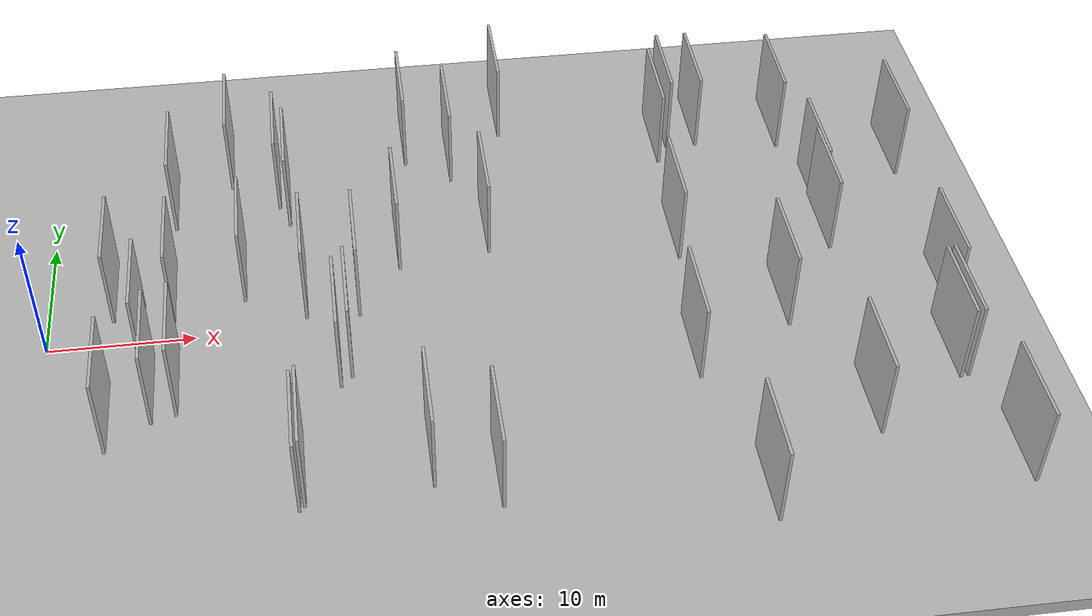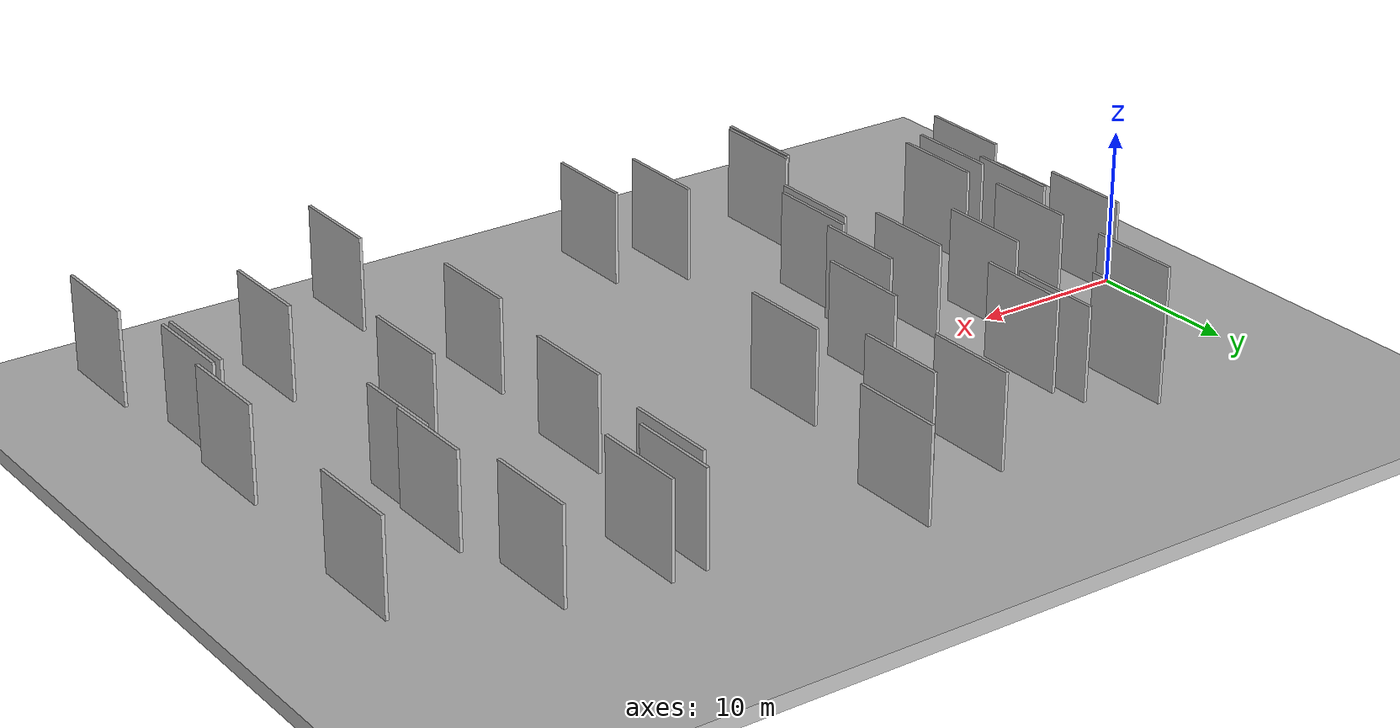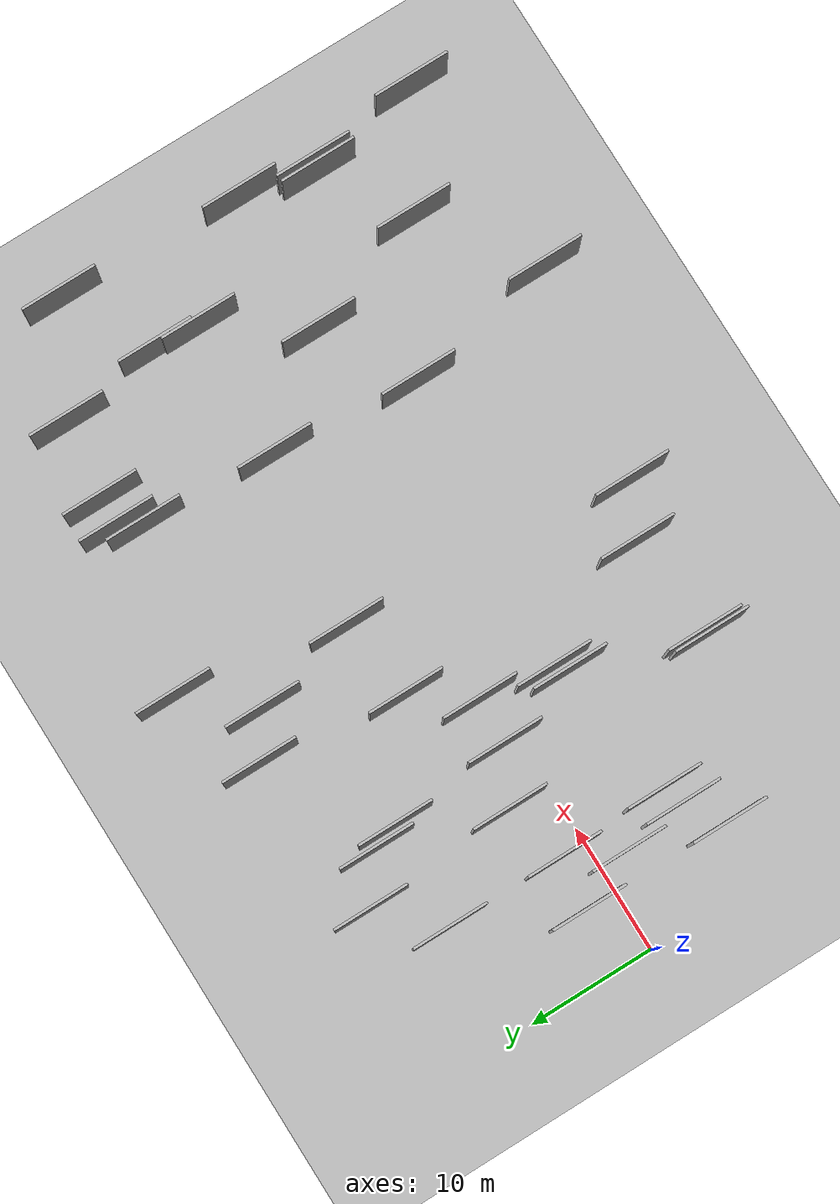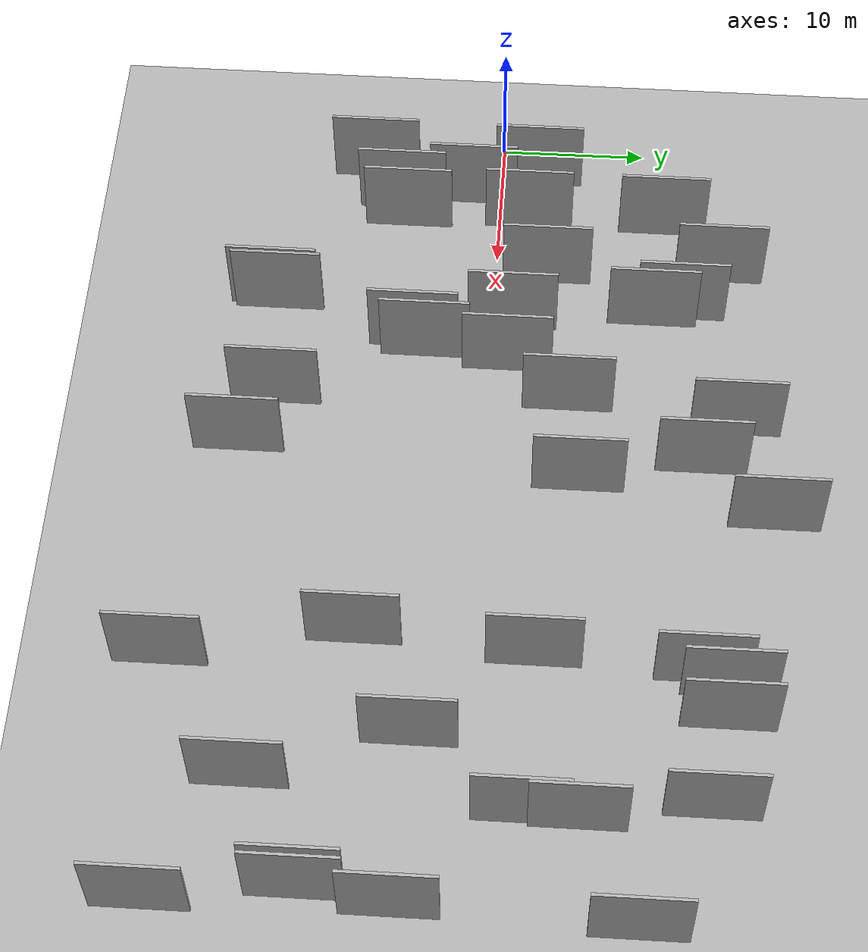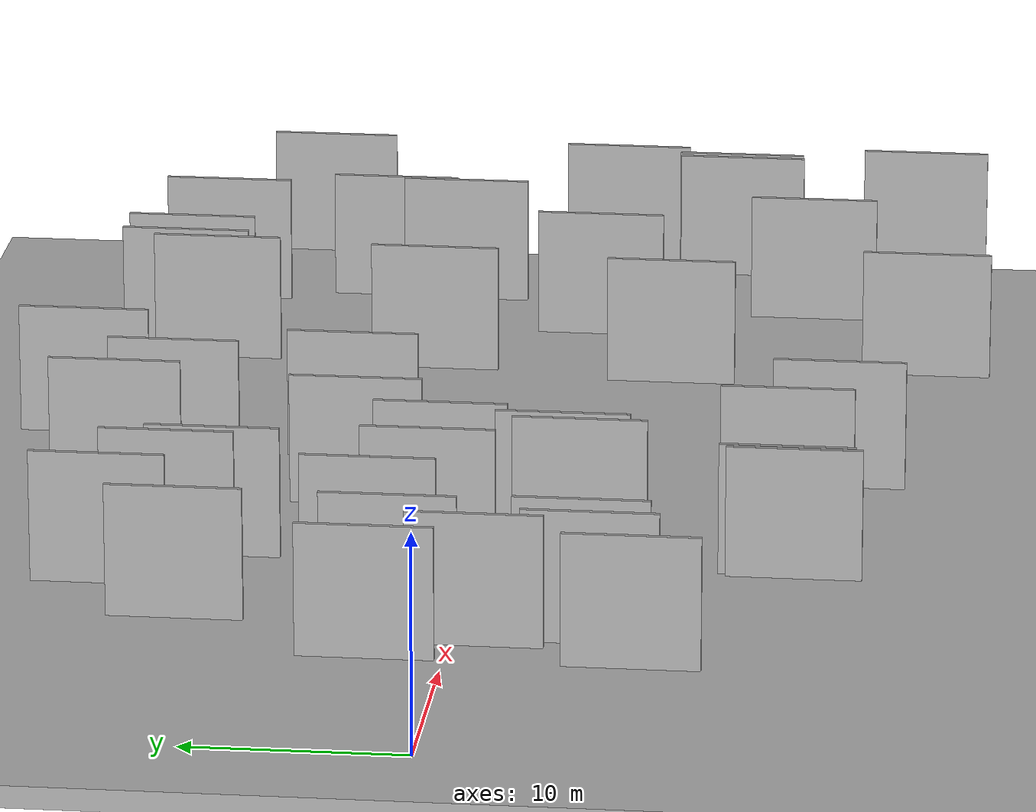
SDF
<?xml version="1.0" encoding="utf-8"?>

<sdf version="1.6">

   <world name="default">

      <gui fullscreen="0">

         <camera name="user_camera">

            <pose>-15 0 4.57585 0 0 0</pose>

            <view_controller>orbit</view_controller>

         </camera>

      </gui>

      <scene>

         <sky>

           <clouds>

             <speed>12</speed>

           </clouds>

         </sky>

         <ambient>0.4 0.4 0.4 1</ambient>

         <background>0.7 0.7 0.7 1</background>

         <shadows>1</shadows>

      </scene>

      <gravity>0 0 -9.8066</gravity>

      <magnetic_field>6e-06 2.3e-05 -4.2e-05</magnetic_field>

      <physics default="0" name="default_physics" type="ode">

         <ode>

            <solver>

               <type>quick</type>

               <iters>10</iters>

               <sor>1.0</sor>

               <use_dynamic_moi_rescaling>0</use_dynamic_moi_rescaling>

            </solver>

            <constraints>

               <cfm>0</cfm>

               <erp>0.2</erp>

               <contact_max_correcting_vel>100</contact_max_correcting_vel>

               <contact_surface_layer>0.001</contact_surface_layer>

            </constraints>

         </ode>

         <max_step_size>0.004</max_step_size>

         <real_time_factor>1</real_time_factor>

         <real_time_update_rate>250</real_time_update_rate>

      </physics>

      <light name="sun" type="directional">

         <cast_shadows>1</cast_shadows>

         <pose>0 0 10 0 0 0</pose>

         <diffuse>0.8 0.8 0.8 1</diffuse>

         <specular>0.2 0.2 0.2 1</specular>

         <attenuation>

            <range>1000</range>

            <constant>0.9</constant>

            <linear>0.01</linear>

            <quadratic>0.001</quadratic>

         </attenuation>

         <direction>-0.5 0.1 -0.9</direction>

      </light>

      <include>

         <name>ground_plane_1</name>

         <uri>model://HANNAS_ground_plane</uri>

         <pose>0 0 0  0 0 0</pose>

      </include>

      <include>

         <name>ground_plane_2</name>

         <uri>model://HANNAS_ground_plane</uri>

         <pose>100 0 0  0 0 0</pose>

      </include>

      <model name="HANNAS_wall_1">

         <static>1</static>

         <pose frame="">60.9455 -18.0654 2.5 0.000000 0.000000 1.570796</pose>

         <link name="link">

            <pose frame="">0 0 3.00 0 0 0</pose>

            <collision name="collision">

               <geometry>

                  <box>

                     <size>6.00 0.2 6.00</size>

                  </box>

               </geometry>

               <max_contacts>10</max_contacts>

               <surface>

                  <contact>

                     <ode/>

                  </contact>

                  <bounce/>

                  <friction>

                     <torsional>

                        <ode/>

                     </torsional>

                     <ode/>

                  </friction>

               </surface>

            </collision>

            <visual name="visual">

               <cast_shadows>0</cast_shadows>

               <geometry>

                  <box>

                     <size>6.00 0.2 6.00</size>

                  </box>

               </geometry>

               <material>

                  <script>

                     <uri>model://HANNAS_wall/materials/scripts</uri>

                     <uri>model://HANNAS_wall/materials/textures</uri>

                     <name>vrc/HANNAS_wall</name>

                  </script>

               </material>

            </visual>

            <self_collide>0</self_collide>

            <enable_wind>0</enable_wind>

            <kinematic>0</kinematic>

         </link>

      </model>

      <model name="HANNAS_wall_2">

         <static>1</static>

         <pose frame="">47.1748 16.1364 2.5 0.000000 0.000000 1.570796</pose>

         <link name="link">

            <pose frame="">0 0 3.00 0 0 0</pose>

            <collision name="collision">

               <geometry>

                  <box>

                     <size>6.00 0.2 6.00</size>

                  </box>

               </geometry>

               <max_contacts>10</max_contacts>

               <surface>

                  <contact>

                     <ode/>

                  </contact>

                  <bounce/>

                  <friction>

                     <torsional>

                        <ode/>

                     </torsional>

                     <ode/>

                  </friction>

               </surface>

            </collision>

            <visual name="visual">

               <cast_shadows>0</cast_shadows>

               <geometry>

                  <box>

                     <size>6.00 0.2 6.00</size>

                  </box>

               </geometry>

               <material>

                  <script>

                     <uri>model://HANNAS_wall/materials/scripts</uri>

                     <uri>model://HANNAS_wall/materials/textures</uri>

                     <name>vrc/HANNAS_wall</name>

                  </script>

               </material>

            </visual>

            <self_collide>0</self_collide>

            <enable_wind>0</enable_wind>

            <kinematic>0</kinematic>

         </link>

      </model>

      <model name="HANNAS_wall_3">

         <static>1</static>

         <pose frame="">16.5662 -14.8393 2.5 0.000000 0.000000 1.570796</pose>

         <link name="link">

            <pose frame="">0 0 3.00 0 0 0</pose>

            <collision name="collision">

               <geometry>

                  <box>

                     <size>6.00 0.2 6.00</size>

                  </box>

               </geometry>

               <max_contacts>10</max_contacts>

               <surface>

                  <contact>

                     <ode/>

                  </contact>

                  <bounce/>

                  <friction>

                     <torsional>

                        <ode/>

                     </torsional>

                     <ode/>

                  </friction>

               </surface>

            </collision>

            <visual name="visual">

               <cast_shadows>0</cast_shadows>

               <geometry>

                  <box>

                     <size>6.00 0.2 6.00</size>

                  </box>

               </geometry>

               <material>

                  <script>

                     <uri>model://HANNAS_wall/materials/scripts</uri>

                     <uri>model://HANNAS_wall/materials/textures</uri>

                     <name>vrc/HANNAS_wall</name>

                  </script>

               </material>

            </visual>

            <self_collide>0</self_collide>

            <enable_wind>0</enable_wind>

            <kinematic>0</kinematic>

         </link>

      </model>

      <model name="HANNAS_wall_4">

         <static>1</static>

         <pose frame="">44.8052 -19.0367 2.5 0.000000 0.000000 1.570796</pose>

         <link name="link">

            <pose frame="">0 0 3.00 0 0 0</pose>

            <collision name="collision">

               <geometry>

                  <box>

                     <size>6.00 0.2 6.00</size>

                  </box>

               </geometry>

               <max_contacts>10</max_contacts>

               <surface>

                  <contact>

                     <ode/>

                  </contact>

                  <bounce/>

                  <friction>

                     <torsional>

                        <ode/>

                     </torsional>

                     <ode/>

                  </friction>

               </surface>

            </collision>

            <visual name="visual">

               <cast_shadows>0</cast_shadows>

               <geometry>

                  <box>

                     <size>6.00 0.2 6.00</size>

                  </box>

               </geometry>

               <material>

                  <script>

                     <uri>model://HANNAS_wall/materials/scripts</uri>

                     <uri>model://HANNAS_wall/materials/textures</uri>

                     <name>vrc/HANNAS_wall</name>

                  </script>

               </material>

            </visual>

            <self_collide>0</self_collide>

            <enable_wind>0</enable_wind>

            <kinematic>0</kinematic>

         </link>

      </model>

      <model name="HANNAS_wall_5">

         <static>1</static>

         <pose frame="">25.4882 16.5224 2.5 0.000000 0.000000 1.570796</pose>

         <link name="link">

            <pose frame="">0 0 3.00 0 0 0</pose>

            <collision name="collision">

               <geometry>

                  <box>

                     <size>6.00 0.2 6.00</size>

                  </box>

               </geometry>

               <max_contacts>10</max_contacts>

               <surface>

                  <contact>

                     <ode/>

                  </contact>

                  <bounce/>

                  <friction>

                     <torsional>

                        <ode/>

                     </torsional>

                     <ode/>

                  </friction>

               </surface>

            </collision>

            <visual name="visual">

               <cast_shadows>0</cast_shadows>

               <geometry>

                  <box>

                     <size>6.00 0.2 6.00</size>

                  </box>

               </geometry>

               <material>

                  <script>

                     <uri>model://HANNAS_wall/materials/scripts</uri>

                     <uri>model://HANNAS_wall/materials/textures</uri>

                     <name>vrc/HANNAS_wall</name>

                  </script>

               </material>

            </visual>

            <self_collide>0</self_collide>

            <enable_wind>0</enable_wind>

            <kinematic>0</kinematic>

         </link>

      </model>

      <model name="HANNAS_wall_6">

         <static>1</static>

         <pose frame="">8.8410 2.0993 2.5 0.000000 0.000000 1.570796</pose>

         <link name="link">

            <pose frame="">0 0 3.00 0 0 0</pose>

            <collision name="collision">

               <geometry>

                  <box>

                     <size>6.00 0.2 6.00</size>

                  </box>

               </geometry>

               <max_contacts>10</max_contacts>

               <surface>

                  <contact>

                     <ode/>

                  </contact>

                  <bounce/>

                  <friction>

                     <torsional>

                        <ode/>

                     </torsional>

                     <ode/>

                  </friction>

               </surface>

            </collision>

            <visual name="visual">

               <cast_shadows>0</cast_shadows>

               <geometry>

                  <box>

                     <size>6.00 0.2 6.00</size>

                  </box>

               </geometry>

               <material>

                  <script>

                     <uri>model://HANNAS_wall/materials/scripts</uri>

                     <uri>model://HANNAS_wall/materials/textures</uri>

                     <name>vrc/HANNAS_wall</name>

                  </script>

               </material>

            </visual>

            <self_collide>0</self_collide>

            <enable_wind>0</enable_wind>

            <kinematic>0</kinematic>

         </link>

      </model>

      <model name="HANNAS_wall_7">

         <static>1</static>

         <pose frame="">60.5503 -3.5335 2.5 0.000000 0.000000 1.570796</pose>

         <link name="link">

            <pose frame="">0 0 3.00 0 0 0</pose>

            <collision name="collision">

               <geometry>

                  <box>

                     <size>6.00 0.2 6.00</size>

                  </box>

               </geometry>

               <max_contacts>10</max_contacts>

               <surface>

                  <contact>

                     <ode/>

                  </contact>

                  <bounce/>

                  <friction>

                     <torsional>

                        <ode/>

                     </torsional>

                     <ode/>

                  </friction>

               </surface>

            </collision>

            <visual name="visual">

               <cast_shadows>0</cast_shadows>

               <geometry>

                  <box>

                     <size>6.00 0.2 6.00</size>

                  </box>

               </geometry>

               <material>

                  <script>

                     <uri>model://HANNAS_wall/materials/scripts</uri>

                     <uri>model://HANNAS_wall/materials/textures</uri>

                     <name>vrc/HANNAS_wall</name>

                  </script>

               </material>

            </visual>

            <self_collide>0</self_collide>

            <enable_wind>0</enable_wind>

            <kinematic>0</kinematic>

         </link>

      </model>

      <model name="HANNAS_wall_8">

         <static>1</static>

         <pose frame="">30.4739 6.3289 2.5 0.000000 0.000000 1.570796</pose>

         <link name="link">

            <pose frame="">0 0 3.00 0 0 0</pose>

            <collision name="collision">

               <geometry>

                  <box>

                     <size>6.00 0.2 6.00</size>

                  </box>

               </geometry>

               <max_contacts>10</max_contacts>

               <surface>

                  <contact>

                     <ode/>

                  </contact>

                  <bounce/>

                  <friction>

                     <torsional>

                        <ode/>

                     </torsional>

                     <ode/>

                  </friction>

               </surface>

            </collision>

            <visual name="visual">

               <cast_shadows>0</cast_shadows>

               <geometry>

                  <box>

                     <size>6.00 0.2 6.00</size>

                  </box>

               </geometry>

               <material>

                  <script>

                     <uri>model://HANNAS_wall/materials/scripts</uri>

                     <uri>model://HANNAS_wall/materials/textures</uri>

                     <name>vrc/HANNAS_wall</name>

                  </script>

               </material>

            </visual>

            <self_collide>0</self_collide>

            <enable_wind>0</enable_wind>

            <kinematic>0</kinematic>

         </link>

      </model>

      <model name="HANNAS_wall_9">

         <static>1</static>

         <pose frame="">24.7424 -13.9492 2.5 0.000000 0.000000 1.570796</pose>

         <link name="link">

            <pose frame="">0 0 3.00 0 0 0</pose>

            <collision name="collision">

               <geometry>

                  <box>

                     <size>6.00 0.2 6.00</size>

                  </box>

               </geometry>

               <max_contacts>10</max_contacts>

               <surface>

                  <contact>

                     <ode/>

                  </contact>

                  <bounce/>

                  <friction>

                     <torsional>

                        <ode/>

                     </torsional>

                     <ode/>

                  </friction>

               </surface>

            </collision>

            <visual name="visual">

               <cast_shadows>0</cast_shadows>

               <geometry>

                  <box>

                     <size>6.00 0.2 6.00</size>

                  </box>

               </geometry>

               <material>

                  <script>

                     <uri>model://HANNAS_wall/materials/scripts</uri>

                     <uri>model://HANNAS_wall/materials/textures</uri>

                     <name>vrc/HANNAS_wall</name>

                  </script>

               </material>

            </visual>

            <self_collide>0</self_collide>

            <enable_wind>0</enable_wind>

            <kinematic>0</kinematic>

         </link>

      </model>

      <model name="HANNAS_wall_10">

         <static>1</static>

         <pose frame="">32.6877 19.0585 2.5 0.000000 0.000000 1.570796</pose>

         <link name="link">

            <pose frame="">0 0 3.00 0 0 0</pose>

            <collision name="collision">

               <geometry>

                  <box>

                     <size>6.00 0.2 6.00</size>

                  </box>

               </geometry>

               <max_contacts>10</max_contacts>

               <surface>

                  <contact>

                     <ode/>

                  </contact>

                  <bounce/>

                  <friction>

                     <torsional>

                        <ode/>

                     </torsional>

                     <ode/>

                  </friction>

               </surface>

            </collision>

            <visual name="visual">

               <cast_shadows>0</cast_shadows>

               <geometry>

                  <box>

                     <size>6.00 0.2 6.00</size>

                  </box>

               </geometry>

               <material>

                  <script>

                     <uri>model://HANNAS_wall/materials/scripts</uri>

                     <uri>model://HANNAS_wall/materials/textures</uri>

                     <name>vrc/HANNAS_wall</name>

                  </script>

               </material>

            </visual>

            <self_collide>0</self_collide>

            <enable_wind>0</enable_wind>

            <kinematic>0</kinematic>

         </link>

      </model>

      <model name="HANNAS_wall_11">

         <static>1</static>

         <pose frame="">59.2138 -9.2210 2.5 0.000000 0.000000 1.570796</pose>

         <link name="link">

            <pose frame="">0 0 3.00 0 0 0</pose>

            <collision name="collision">

               <geometry>

                  <box>

                     <size>6.00 0.2 6.00</size>

                  </box>

               </geometry>

               <max_contacts>10</max_contacts>

               <surface>

                  <contact>

                     <ode/>

                  </contact>

                  <bounce/>

                  <friction>

                     <torsional>

                        <ode/>

                     </torsional>

                     <ode/>

                  </friction>

               </surface>

            </collision>

            <visual name="visual">

               <cast_shadows>0</cast_shadows>

               <geometry>

                  <box>

                     <size>6.00 0.2 6.00</size>

                  </box>

               </geometry>

               <material>

                  <script>

                     <uri>model://HANNAS_wall/materials/scripts</uri>

                     <uri>model://HANNAS_wall/materials/textures</uri>

                     <name>vrc/HANNAS_wall</name>

                  </script>

               </material>

            </visual>

            <self_collide>0</self_collide>

            <enable_wind>0</enable_wind>

            <kinematic>0</kinematic>

         </link>

      </model>

      <model name="HANNAS_wall_12">

         <static>1</static>

         <pose frame="">21.1701 1.2390 2.5 0.000000 0.000000 1.570796</pose>

         <link name="link">

            <pose frame="">0 0 3.00 0 0 0</pose>

            <collision name="collision">

               <geometry>

                  <box>

                     <size>6.00 0.2 6.00</size>

                  </box>

               </geometry>

               <max_contacts>10</max_contacts>

               <surface>

                  <contact>

                     <ode/>

                  </contact>

                  <bounce/>

                  <friction>

                     <torsional>

                        <ode/>

                     </torsional>

                     <ode/>

                  </friction>

               </surface>

            </collision>

            <visual name="visual">

               <cast_shadows>0</cast_shadows>

               <geometry>

                  <box>

                     <size>6.00 0.2 6.00</size>

                  </box>

               </geometry>

               <material>

                  <script>

                     <uri>model://HANNAS_wall/materials/scripts</uri>

                     <uri>model://HANNAS_wall/materials/textures</uri>

                     <name>vrc/HANNAS_wall</name>

                  </script>

               </material>

            </visual>

            <self_collide>0</self_collide>

            <enable_wind>0</enable_wind>

            <kinematic>0</kinematic>

         </link>

      </model>

      <model name="HANNAS_wall_13">

         <static>1</static>

         <pose frame="">49.4481 -3.2021 2.5 0.000000 0.000000 1.570796</pose>

         <link name="link">

            <pose frame="">0 0 3.00 0 0 0</pose>

            <collision name="collision">

               <geometry>

                  <box>

                     <size>6.00 0.2 6.00</size>

                  </box>

               </geometry>

               <max_contacts>10</max_contacts>

               <surface>

                  <contact>

                     <ode/>

                  </contact>

                  <bounce/>

                  <friction>

                     <torsional>

                        <ode/>

                     </torsional>

                     <ode/>

                  </friction>

               </surface>

            </collision>

            <visual name="visual">

               <cast_shadows>0</cast_shadows>

               <geometry>

                  <box>

                     <size>6.00 0.2 6.00</size>

                  </box>

               </geometry>

               <material>

                  <script>

                     <uri>model://HANNAS_wall/materials/scripts</uri>

                     <uri>model://HANNAS_wall/materials/textures</uri>

                     <name>vrc/HANNAS_wall</name>

                  </script>

               </material>

            </visual>

            <self_collide>0</self_collide>

            <enable_wind>0</enable_wind>

            <kinematic>0</kinematic>

         </link>

      </model>

      <model name="HANNAS_wall_14">

         <static>1</static>

         <pose frame="">43.5170 4.0798 2.5 0.000000 0.000000 1.570796</pose>

         <link name="link">

            <pose frame="">0 0 3.00 0 0 0</pose>

            <collision name="collision">

               <geometry>

                  <box>

                     <size>6.00 0.2 6.00</size>

                  </box>

               </geometry>

               <max_contacts>10</max_contacts>

               <surface>

                  <contact>

                     <ode/>

                  </contact>

                  <bounce/>

                  <friction>

                     <torsional>

                        <ode/>

                     </torsional>

                     <ode/>

                  </friction>

               </surface>

            </collision>

            <visual name="visual">

               <cast_shadows>0</cast_shadows>

               <geometry>

                  <box>

                     <size>6.00 0.2 6.00</size>

                  </box>

               </geometry>

               <material>

                  <script>

                     <uri>model://HANNAS_wall/materials/scripts</uri>

                     <uri>model://HANNAS_wall/materials/textures</uri>

                     <name>vrc/HANNAS_wall</name>

                  </script>

               </material>

            </visual>

            <self_collide>0</self_collide>

            <enable_wind>0</enable_wind>

            <kinematic>0</kinematic>

         </link>

      </model>

      <model name="HANNAS_wall_15">

         <static>1</static>

         <pose frame="">59.7355 -9.1402 2.5 0.000000 0.000000 1.570796</pose>

         <link name="link">

            <pose frame="">0 0 3.00 0 0 0</pose>

            <collision name="collision">

               <geometry>

                  <box>

                     <size>6.00 0.2 6.00</size>

                  </box>

               </geometry>

               <max_contacts>10</max_contacts>

               <surface>

                  <contact>

                     <ode/>

                  </contact>

                  <bounce/>

                  <friction>

                     <torsional>

                        <ode/>

                     </torsional>

                     <ode/>

                  </friction>

               </surface>

            </collision>

            <visual name="visual">

               <cast_shadows>0</cast_shadows>

               <geometry>

                  <box>

                     <size>6.00 0.2 6.00</size>

                  </box>

               </geometry>

               <material>

                  <script>

                     <uri>model://HANNAS_wall/materials/scripts</uri>

                     <uri>model://HANNAS_wall/materials/textures</uri>

                     <name>vrc/HANNAS_wall</name>

                  </script>

               </material>

            </visual>

            <self_collide>0</self_collide>

            <enable_wind>0</enable_wind>

            <kinematic>0</kinematic>

         </link>

      </model>

      <model name="HANNAS_wall_16">

         <static>1</static>

         <pose frame="">28.6353 14.3151 2.5 0.000000 0.000000 1.570796</pose>

         <link name="link">

            <pose frame="">0 0 3.00 0 0 0</pose>

            <collision name="collision">

               <geometry>

                  <box>

                     <size>6.00 0.2 6.00</size>

                  </box>

               </geometry>

               <max_contacts>10</max_contacts>

               <surface>

                  <contact>

                     <ode/>

                  </contact>

                  <bounce/>

                  <friction>

                     <torsional>

                        <ode/>

                     </torsional>

                     <ode/>

                  </friction>

               </surface>

            </collision>

            <visual name="visual">

               <cast_shadows>0</cast_shadows>

               <geometry>

                  <box>

                     <size>6.00 0.2 6.00</size>

                  </box>

               </geometry>

               <material>

                  <script>

                     <uri>model://HANNAS_wall/materials/scripts</uri>

                     <uri>model://HANNAS_wall/materials/textures</uri>

                     <name>vrc/HANNAS_wall</name>

                  </script>

               </material>

            </visual>

            <self_collide>0</self_collide>

            <enable_wind>0</enable_wind>

            <kinematic>0</kinematic>

         </link>

      </model>

      <model name="HANNAS_wall_17">

         <static>1</static>

         <pose frame="">16.8911 -14.5002 2.5 0.000000 0.000000 1.570796</pose>

         <link name="link">

            <pose frame="">0 0 3.00 0 0 0</pose>

            <collision name="collision">

               <geometry>

                  <box>

                     <size>6.00 0.2 6.00</size>

                  </box>

               </geometry>

               <max_contacts>10</max_contacts>

               <surface>

                  <contact>

                     <ode/>

                  </contact>

                  <bounce/>

                  <friction>

                     <torsional>

                        <ode/>

                     </torsional>

                     <ode/>

                  </friction>

               </surface>

            </collision>

            <visual name="visual">

               <cast_shadows>0</cast_shadows>

               <geometry>

                  <box>

                     <size>6.00 0.2 6.00</size>

                  </box>

               </geometry>

               <material>

                  <script>

                     <uri>model://HANNAS_wall/materials/scripts</uri>

                     <uri>model://HANNAS_wall/materials/textures</uri>

                     <name>vrc/HANNAS_wall</name>

                  </script>

               </material>

            </visual>

            <self_collide>0</self_collide>

            <enable_wind>0</enable_wind>

            <kinematic>0</kinematic>

         </link>

      </model>

      <model name="HANNAS_wall_18">

         <static>1</static>

         <pose frame="">61.0634 10.9982 2.5 0.000000 0.000000 1.570796</pose>

         <link name="link">

            <pose frame="">0 0 3.00 0 0 0</pose>

            <collision name="collision">

               <geometry>

                  <box>

                     <size>6.00 0.2 6.00</size>

                  </box>

               </geometry>

               <max_contacts>10</max_contacts>

               <surface>

                  <contact>

                     <ode/>

                  </contact>

                  <bounce/>

                  <friction>

                     <torsional>

                        <ode/>

                     </torsional>

                     <ode/>

                  </friction>

               </surface>

            </collision>

            <visual name="visual">

               <cast_shadows>0</cast_shadows>

               <geometry>

                  <box>

                     <size>6.00 0.2 6.00</size>

                  </box>

               </geometry>

               <material>

                  <script>

                     <uri>model://HANNAS_wall/materials/scripts</uri>

                     <uri>model://HANNAS_wall/materials/textures</uri>

                     <name>vrc/HANNAS_wall</name>

                  </script>

               </material>

            </visual>

            <self_collide>0</self_collide>

            <enable_wind>0</enable_wind>

            <kinematic>0</kinematic>

         </link>

      </model>

      <model name="HANNAS_wall_19">

         <static>1</static>

         <pose frame="">54.1427 3.7907 2.5 0.000000 0.000000 1.570796</pose>

         <link name="link">

            <pose frame="">0 0 3.00 0 0 0</pose>

            <collision name="collision">

               <geometry>

                  <box>

                     <size>6.00 0.2 6.00</size>

                  </box>

               </geometry>

               <max_contacts>10</max_contacts>

               <surface>

                  <contact>

                     <ode/>

                  </contact>

                  <bounce/>

                  <friction>

                     <torsional>

                        <ode/>

                     </torsional>

                     <ode/>

                  </friction>

               </surface>

            </collision>

            <visual name="visual">

               <cast_shadows>0</cast_shadows>

               <geometry>

                  <box>

                     <size>6.00 0.2 6.00</size>

                  </box>

               </geometry>

               <material>

                  <script>

                     <uri>model://HANNAS_wall/materials/scripts</uri>

                     <uri>model://HANNAS_wall/materials/textures</uri>

                     <name>vrc/HANNAS_wall</name>

                  </script>

               </material>

            </visual>

            <self_collide>0</self_collide>

            <enable_wind>0</enable_wind>

            <kinematic>0</kinematic>

         </link>

      </model>

      <model name="HANNAS_wall_20">

         <static>1</static>

         <pose frame="">24.1928 5.4017 2.5 0.000000 0.000000 1.570796</pose>

         <link name="link">

            <pose frame="">0 0 3.00 0 0 0</pose>

            <collision name="collision">

               <geometry>

                  <box>

                     <size>6.00 0.2 6.00</size>

                  </box>

               </geometry>

               <max_contacts>10</max_contacts>

               <surface>

                  <contact>

                     <ode/>

                  </contact>

                  <bounce/>

                  <friction>

                     <torsional>

                        <ode/>

                     </torsional>

                     <ode/>

                  </friction>

               </surface>

            </collision>

            <visual name="visual">

               <cast_shadows>0</cast_shadows>

               <geometry>

                  <box>

                     <size>6.00 0.2 6.00</size>

                  </box>

               </geometry>

               <material>

                  <script>

                     <uri>model://HANNAS_wall/materials/scripts</uri>

                     <uri>model://HANNAS_wall/materials/textures</uri>

                     <name>vrc/HANNAS_wall</name>

                  </script>

               </material>

            </visual>

            <self_collide>0</self_collide>

            <enable_wind>0</enable_wind>

            <kinematic>0</kinematic>

         </link>

      </model>

      <model name="HANNAS_wall_21">

         <static>1</static>

         <pose frame="">53.1570 15.2052 2.5 0.000000 0.000000 1.570796</pose>

         <link name="link">

            <pose frame="">0 0 3.00 0 0 0</pose>

            <collision name="collision">

               <geometry>

                  <box>

                     <size>6.00 0.2 6.00</size>

                  </box>

               </geometry>

               <max_contacts>10</max_contacts>

               <surface>

                  <contact>

                     <ode/>

                  </contact>

                  <bounce/>

                  <friction>

                     <torsional>

                        <ode/>

                     </torsional>

                     <ode/>

                  </friction>

               </surface>

            </collision>

            <visual name="visual">

               <cast_shadows>0</cast_shadows>

               <geometry>

                  <box>

                     <size>6.00 0.2 6.00</size>

                  </box>

               </geometry>

               <material>

                  <script>

                     <uri>model://HANNAS_wall/materials/scripts</uri>

                     <uri>model://HANNAS_wall/materials/textures</uri>

                     <name>vrc/HANNAS_wall</name>

                  </script>

               </material>

            </visual>

            <self_collide>0</self_collide>

            <enable_wind>0</enable_wind>

            <kinematic>0</kinematic>

         </link>

      </model>

      <model name="HANNAS_wall_22">

         <static>1</static>

         <pose frame="">28.6901 -16.0061 2.5 0.000000 0.000000 1.570796</pose>

         <link name="link">

            <pose frame="">0 0 3.00 0 0 0</pose>

            <collision name="collision">

               <geometry>

                  <box>

                     <size>6.00 0.2 6.00</size>

                  </box>

               </geometry>

               <max_contacts>10</max_contacts>

               <surface>

                  <contact>

                     <ode/>

                  </contact>

                  <bounce/>

                  <friction>

                     <torsional>

                        <ode/>

                     </torsional>

                     <ode/>

                  </friction>

               </surface>

            </collision>

            <visual name="visual">

               <cast_shadows>0</cast_shadows>

               <geometry>

                  <box>

                     <size>6.00 0.2 6.00</size>

                  </box>

               </geometry>

               <material>

                  <script>

                     <uri>model://HANNAS_wall/materials/scripts</uri>

                     <uri>model://HANNAS_wall/materials/textures</uri>

                     <name>vrc/HANNAS_wall</name>

                  </script>

               </material>

            </visual>

            <self_collide>0</self_collide>

            <enable_wind>0</enable_wind>

            <kinematic>0</kinematic>

         </link>

      </model>

      <model name="HANNAS_wall_23">

         <static>1</static>

         <pose frame="">52.8084 -13.1677 2.5 0.000000 0.000000 1.570796</pose>

         <link name="link">

            <pose frame="">0 0 3.00 0 0 0</pose>

            <collision name="collision">

               <geometry>

                  <box>

                     <size>6.00 0.2 6.00</size>

                  </box>

               </geometry>

               <max_contacts>10</max_contacts>

               <surface>

                  <contact>

                     <ode/>

                  </contact>

                  <bounce/>

                  <friction>

                     <torsional>

                        <ode/>

                     </torsional>

                     <ode/>

                  </friction>

               </surface>

            </collision>

            <visual name="visual">

               <cast_shadows>0</cast_shadows>

               <geometry>

                  <box>

                     <size>6.00 0.2 6.00</size>

                  </box>

               </geometry>

               <material>

                  <script>

                     <uri>model://HANNAS_wall/materials/scripts</uri>

                     <uri>model://HANNAS_wall/materials/textures</uri>

                     <name>vrc/HANNAS_wall</name>

                  </script>

               </material>

            </visual>

            <self_collide>0</self_collide>

            <enable_wind>0</enable_wind>

            <kinematic>0</kinematic>

         </link>

      </model>

      <model name="HANNAS_wall_24">

         <static>1</static>

         <pose frame="">54.3447 7.2061 2.5 0.000000 0.000000 1.570796</pose>

         <link name="link">

            <pose frame="">0 0 3.00 0 0 0</pose>

            <collision name="collision">

               <geometry>

                  <box>

                     <size>6.00 0.2 6.00</size>

                  </box>

               </geometry>

               <max_contacts>10</max_contacts>

               <surface>

                  <contact>

                     <ode/>

                  </contact>

                  <bounce/>

                  <friction>

                     <torsional>

                        <ode/>

                     </torsional>

                     <ode/>

                  </friction>

               </surface>

            </collision>

            <visual name="visual">

               <cast_shadows>0</cast_shadows>

               <geometry>

                  <box>

                     <size>6.00 0.2 6.00</size>

                  </box>

               </geometry>

               <material>

                  <script>

                     <uri>model://HANNAS_wall/materials/scripts</uri>

                     <uri>model://HANNAS_wall/materials/textures</uri>

                     <name>vrc/HANNAS_wall</name>

                  </script>

               </material>

            </visual>

            <self_collide>0</self_collide>

            <enable_wind>0</enable_wind>

            <kinematic>0</kinematic>

         </link>

      </model>

      <model name="HANNAS_wall_25">

         <static>1</static>

         <pose frame="">17.6439 1.4008 2.5 0.000000 0.000000 1.570796</pose>

         <link name="link">

            <pose frame="">0 0 3.00 0 0 0</pose>

            <collision name="collision">

               <geometry>

                  <box>

                     <size>6.00 0.2 6.00</size>

                  </box>

               </geometry>

               <max_contacts>10</max_contacts>

               <surface>

                  <contact>

                     <ode/>

                  </contact>

                  <bounce/>

                  <friction>

                     <torsional>

                        <ode/>

                     </torsional>

                     <ode/>

                  </friction>

               </surface>

            </collision>

            <visual name="visual">

               <cast_shadows>0</cast_shadows>

               <geometry>

                  <box>

                     <size>6.00 0.2 6.00</size>

                  </box>

               </geometry>

               <material>

                  <script>

                     <uri>model://HANNAS_wall/materials/scripts</uri>

                     <uri>model://HANNAS_wall/materials/textures</uri>

                     <name>vrc/HANNAS_wall</name>

                  </script>

               </material>

            </visual>

            <self_collide>0</self_collide>

            <enable_wind>0</enable_wind>

            <kinematic>0</kinematic>

         </link>

      </model>

      <model name="HANNAS_wall_26">

         <static>1</static>

         <pose frame="">44.0708 14.4957 2.5 0.000000 0.000000 1.570796</pose>

         <link name="link">

            <pose frame="">0 0 3.00 0 0 0</pose>

            <collision name="collision">

               <geometry>

                  <box>

                     <size>6.00 0.2 6.00</size>

                  </box>

               </geometry>

               <max_contacts>10</max_contacts>

               <surface>

                  <contact>

                     <ode/>

                  </contact>

                  <bounce/>

                  <friction>

                     <torsional>

                        <ode/>

                     </torsional>

                     <ode/>

                  </friction>

               </surface>

            </collision>

            <visual name="visual">

               <cast_shadows>0</cast_shadows>

               <geometry>

                  <box>

                     <size>6.00 0.2 6.00</size>

                  </box>

               </geometry>

               <material>

                  <script>

                     <uri>model://HANNAS_wall/materials/scripts</uri>

                     <uri>model://HANNAS_wall/materials/textures</uri>

                     <name>vrc/HANNAS_wall</name>

                  </script>

               </material>

            </visual>

            <self_collide>0</self_collide>

            <enable_wind>0</enable_wind>

            <kinematic>0</kinematic>

         </link>

      </model>

      <model name="HANNAS_wall_27">

         <static>1</static>

         <pose frame="">4.8624 2.6309 2.5 0.000000 0.000000 1.570796</pose>

         <link name="link">

            <pose frame="">0 0 3.00 0 0 0</pose>

            <collision name="collision">

               <geometry>

                  <box>

                     <size>6.00 0.2 6.00</size>

                  </box>

               </geometry>

               <max_contacts>10</max_contacts>

               <surface>

                  <contact>

                     <ode/>

                  </contact>

                  <bounce/>

                  <friction>

                     <torsional>

                        <ode/>

                     </torsional>

                     <ode/>

                  </friction>

               </surface>

            </collision>

            <visual name="visual">

               <cast_shadows>0</cast_shadows>

               <geometry>

                  <box>

                     <size>6.00 0.2 6.00</size>

                  </box>

               </geometry>

               <material>

                  <script>

                     <uri>model://HANNAS_wall/materials/scripts</uri>

                     <uri>model://HANNAS_wall/materials/textures</uri>

                     <name>vrc/HANNAS_wall</name>

                  </script>

               </material>

            </visual>

            <self_collide>0</self_collide>

            <enable_wind>0</enable_wind>

            <kinematic>0</kinematic>

         </link>

      </model>

      <model name="HANNAS_wall_28">

         <static>1</static>

         <pose frame="">9.1526 -6.2276 2.5 0.000000 0.000000 1.570796</pose>

         <link name="link">

            <pose frame="">0 0 3.00 0 0 0</pose>

            <collision name="collision">

               <geometry>

                  <box>

                     <size>6.00 0.2 6.00</size>

                  </box>

               </geometry>

               <max_contacts>10</max_contacts>

               <surface>

                  <contact>

                     <ode/>

                  </contact>

                  <bounce/>

                  <friction>

                     <torsional>

                        <ode/>

                     </torsional>

                     <ode/>

                  </friction>

               </surface>

            </collision>

            <visual name="visual">

               <cast_shadows>0</cast_shadows>

               <geometry>

                  <box>

                     <size>6.00 0.2 6.00</size>

                  </box>

               </geometry>

               <material>

                  <script>

                     <uri>model://HANNAS_wall/materials/scripts</uri>

                     <uri>model://HANNAS_wall/materials/textures</uri>

                     <name>vrc/HANNAS_wall</name>

                  </script>

               </material>

            </visual>

            <self_collide>0</self_collide>

            <enable_wind>0</enable_wind>

            <kinematic>0</kinematic>

         </link>

      </model>

      <model name="HANNAS_wall_29">

         <static>1</static>

         <pose frame="">12.8397 15.3425 2.5 0.000000 0.000000 1.570796</pose>

         <link name="link">

            <pose frame="">0 0 3.00 0 0 0</pose>

            <collision name="collision">

               <geometry>

                  <box>

                     <size>6.00 0.2 6.00</size>

                  </box>

               </geometry>

               <max_contacts>10</max_contacts>

               <surface>

                  <contact>

                     <ode/>

                  </contact>

                  <bounce/>

                  <friction>

                     <torsional>

                        <ode/>

                     </torsional>

                     <ode/>

                  </friction>

               </surface>

            </collision>

            <visual name="visual">

               <cast_shadows>0</cast_shadows>

               <geometry>

                  <box>

                     <size>6.00 0.2 6.00</size>

                  </box>

               </geometry>

               <material>

                  <script>

                     <uri>model://HANNAS_wall/materials/scripts</uri>

                     <uri>model://HANNAS_wall/materials/textures</uri>

                     <name>vrc/HANNAS_wall</name>

                  </script>

               </material>

            </visual>

            <self_collide>0</self_collide>

            <enable_wind>0</enable_wind>

            <kinematic>0</kinematic>

         </link>

      </model>

      <model name="HANNAS_wall_30">

         <static>1</static>

         <pose frame="">7.5693 -6.7464 2.5 0.000000 0.000000 1.570796</pose>

         <link name="link">

            <pose frame="">0 0 3.00 0 0 0</pose>

            <collision name="collision">

               <geometry>

                  <box>

                     <size>6.00 0.2 6.00</size>

                  </box>

               </geometry>

               <max_contacts>10</max_contacts>

               <surface>

                  <contact>

                     <ode/>

                  </contact>

                  <bounce/>

                  <friction>

                     <torsional>

                        <ode/>

                     </torsional>

                     <ode/>

                  </friction>

               </surface>

            </collision>

            <visual name="visual">

               <cast_shadows>0</cast_shadows>

               <geometry>

                  <box>

                     <size>6.00 0.2 6.00</size>

                  </box>

               </geometry>

               <material>

                  <script>

                     <uri>model://HANNAS_wall/materials/scripts</uri>

                     <uri>model://HANNAS_wall/materials/textures</uri>

                     <name>vrc/HANNAS_wall</name>

                  </script>

               </material>

            </visual>

            <self_collide>0</self_collide>

            <enable_wind>0</enable_wind>

            <kinematic>0</kinematic>

         </link>

      </model>

      <model name="HANNAS_wall_31">

         <static>1</static>

         <pose frame="">4.7825 -8.7746 2.5 0.000000 0.000000 1.570796</pose>

         <link name="link">

            <pose frame="">0 0 3.00 0 0 0</pose>

            <collision name="collision">

               <geometry>

                  <box>

                     <size>6.00 0.2 6.00</size>

                  </box>

               </geometry>

               <max_contacts>10</max_contacts>

               <surface>

                  <contact>

                     <ode/>

                  </contact>

                  <bounce/>

                  <friction>

                     <torsional>

                        <ode/>

                     </torsional>

                     <ode/>

                  </friction>

               </surface>

            </collision>

            <visual name="visual">

               <cast_shadows>0</cast_shadows>

               <geometry>

                  <box>

                     <size>6.00 0.2 6.00</size>

                  </box>

               </geometry>

               <material>

                  <script>

                     <uri>model://HANNAS_wall/materials/scripts</uri>

                     <uri>model://HANNAS_wall/materials/textures</uri>

                     <name>vrc/HANNAS_wall</name>

                  </script>

               </material>

            </visual>

            <self_collide>0</self_collide>

            <enable_wind>0</enable_wind>

            <kinematic>0</kinematic>

         </link>

      </model>

      <model name="HANNAS_wall_32">

         <static>1</static>

         <pose frame="">16.8438 10.8438 2.5 0.000000 0.000000 1.570796</pose>

         <link name="link">

            <pose frame="">0 0 3.00 0 0 0</pose>

            <collision name="collision">

               <geometry>

                  <box>

                     <size>6.00 0.2 6.00</size>

                  </box>

               </geometry>

               <max_contacts>10</max_contacts>

               <surface>

                  <contact>

                     <ode/>

                  </contact>

                  <bounce/>

                  <friction>

                     <torsional>

                        <ode/>

                     </torsional>

                     <ode/>

                  </friction>

               </surface>

            </collision>

            <visual name="visual">

               <cast_shadows>0</cast_shadows>

               <geometry>

                  <box>

                     <size>6.00 0.2 6.00</size>

                  </box>

               </geometry>

               <material>

                  <script>

                     <uri>model://HANNAS_wall/materials/scripts</uri>

                     <uri>model://HANNAS_wall/materials/textures</uri>

                     <name>vrc/HANNAS_wall</name>

                  </script>

               </material>

            </visual>

            <self_collide>0</self_collide>

            <enable_wind>0</enable_wind>

            <kinematic>0</kinematic>

         </link>

      </model>

      <model name="HANNAS_wall_33">

         <static>1</static>

         <pose frame="">8.8654 11.3885 2.5 0.000000 0.000000 1.570796</pose>

         <link name="link">

            <pose frame="">0 0 3.00 0 0 0</pose>

            <collision name="collision">

               <geometry>

                  <box>

                     <size>6.00 0.2 6.00</size>

                  </box>

               </geometry>

               <max_contacts>10</max_contacts>

               <surface>

                  <contact>

                     <ode/>

                  </contact>

                  <bounce/>

                  <friction>

                     <torsional>

                        <ode/>

                     </torsional>

                     <ode/>

                  </friction>

               </surface>

            </collision>

            <visual name="visual">

               <cast_shadows>0</cast_shadows>

               <geometry>

                  <box>

                     <size>6.00 0.2 6.00</size>

                  </box>

               </geometry>

               <material>

                  <script>

                     <uri>model://HANNAS_wall/materials/scripts</uri>

                     <uri>model://HANNAS_wall/materials/textures</uri>

                     <name>vrc/HANNAS_wall</name>

                  </script>

               </material>

            </visual>

            <self_collide>0</self_collide>

            <enable_wind>0</enable_wind>

            <kinematic>0</kinematic>

         </link>

      </model>

      <model name="HANNAS_wall_34">

         <static>1</static>

         <pose frame="">42.6006 -7.1705 2.5 0.000000 0.000000 1.570796</pose>

         <link name="link">

            <pose frame="">0 0 3.00 0 0 0</pose>

            <collision name="collision">

               <geometry>

                  <box>

                     <size>6.00 0.2 6.00</size>

                  </box>

               </geometry>

               <max_contacts>10</max_contacts>

               <surface>

                  <contact>

                     <ode/>

                  </contact>

                  <bounce/>

                  <friction>

                     <torsional>

                        <ode/>

                     </torsional>

                     <ode/>

                  </friction>

               </surface>

            </collision>

            <visual name="visual">

               <cast_shadows>0</cast_shadows>

               <geometry>

                  <box>

                     <size>6.00 0.2 6.00</size>

                  </box>

               </geometry>

               <material>

                  <script>

                     <uri>model://HANNAS_wall/materials/scripts</uri>

                     <uri>model://HANNAS_wall/materials/textures</uri>

                     <name>vrc/HANNAS_wall</name>

                  </script>

               </material>

            </visual>

            <self_collide>0</self_collide>

            <enable_wind>0</enable_wind>

            <kinematic>0</kinematic>

         </link>

      </model>

      <model name="HANNAS_wall_35">

         <static>1</static>

         <pose frame="">45.0032 16.1340 2.5 0.000000 0.000000 1.570796</pose>

         <link name="link">

            <pose frame="">0 0 3.00 0 0 0</pose>

            <collision name="collision">

               <geometry>

                  <box>

                     <size>6.00 0.2 6.00</size>

                  </box>

               </geometry>

               <max_contacts>10</max_contacts>

               <surface>

                  <contact>

                     <ode/>

                  </contact>

                  <bounce/>

                  <friction>

                     <torsional>

                        <ode/>

                     </torsional>

                     <ode/>

                  </friction>

               </surface>

            </collision>

            <visual name="visual">

               <cast_shadows>0</cast_shadows>

               <geometry>

                  <box>

                     <size>6.00 0.2 6.00</size>

                  </box>

               </geometry>

               <material>

                  <script>

                     <uri>model://HANNAS_wall/materials/scripts</uri>

                     <uri>model://HANNAS_wall/materials/textures</uri>

                     <name>vrc/HANNAS_wall</name>

                  </script>

               </material>

            </visual>

            <self_collide>0</self_collide>

            <enable_wind>0</enable_wind>

            <kinematic>0</kinematic>

         </link>

      </model>

      <model name="HANNAS_wall_36">

         <static>1</static>

         <pose frame="">20.3459 -4.3090 2.5 0.000000 0.000000 1.570796</pose>

         <link name="link">

            <pose frame="">0 0 3.00 0 0 0</pose>

            <collision name="collision">

               <geometry>

                  <box>

                     <size>6.00 0.2 6.00</size>

                  </box>

               </geometry>

               <max_contacts>10</max_contacts>

               <surface>

                  <contact>

                     <ode/>

                  </contact>

                  <bounce/>

                  <friction>

                     <torsional>

                        <ode/>

                     </torsional>

                     <ode/>

                  </friction>

               </surface>

            </collision>

            <visual name="visual">

               <cast_shadows>0</cast_shadows>

               <geometry>

                  <box>

                     <size>6.00 0.2 6.00</size>

                  </box>

               </geometry>

               <material>

                  <script>

                     <uri>model://HANNAS_wall/materials/scripts</uri>

                     <uri>model://HANNAS_wall/materials/textures</uri>

                     <name>vrc/HANNAS_wall</name>

                  </script>

               </material>

            </visual>

            <self_collide>0</self_collide>

            <enable_wind>0</enable_wind>

            <kinematic>0</kinematic>

         </link>

      </model>

      <model name="HANNAS_wall_37">

         <static>1</static>

         <pose frame="">16.1788 12.7840 2.5 0.000000 0.000000 1.570796</pose>

         <link name="link">

            <pose frame="">0 0 3.00 0 0 0</pose>

            <collision name="collision">

               <geometry>

                  <box>

                     <size>6.00 0.2 6.00</size>

                  </box>

               </geometry>

               <max_contacts>10</max_contacts>

               <surface>

                  <contact>

                     <ode/>

                  </contact>

                  <bounce/>

                  <friction>

                     <torsional>

                        <ode/>

                     </torsional>

                     <ode/>

                  </friction>

               </surface>

            </collision>

            <visual name="visual">

               <cast_shadows>0</cast_shadows>

               <geometry>

                  <box>

                     <size>6.00 0.2 6.00</size>

                  </box>

               </geometry>

               <material>

                  <script>

                     <uri>model://HANNAS_wall/materials/scripts</uri>

                     <uri>model://HANNAS_wall/materials/textures</uri>

                     <name>vrc/HANNAS_wall</name>

                  </script>

               </material>

            </visual>

            <self_collide>0</self_collide>

            <enable_wind>0</enable_wind>

            <kinematic>0</kinematic>

         </link>

      </model>

      <model name="HANNAS_wall_38">

         <static>1</static>

         <pose frame="">6.8070 -1.8453 2.5 0.000000 0.000000 1.570796</pose>

         <link name="link">

            <pose frame="">0 0 3.00 0 0 0</pose>

            <collision name="collision">

               <geometry>

                  <box>

                     <size>6.00 0.2 6.00</size>

                  </box>

               </geometry>

               <max_contacts>10</max_contacts>

               <surface>

                  <contact>

                     <ode/>

                  </contact>

                  <bounce/>

                  <friction>

                     <torsional>

                        <ode/>

                     </torsional>

                     <ode/>

                  </friction>

               </surface>

            </collision>

            <visual name="visual">

               <cast_shadows>0</cast_shadows>

               <geometry>

                  <box>

                     <size>6.00 0.2 6.00</size>

                  </box>

               </geometry>

               <material>

                  <script>

                     <uri>model://HANNAS_wall/materials/scripts</uri>

                     <uri>model://HANNAS_wall/materials/textures</uri>

                     <name>vrc/HANNAS_wall</name>

                  </script>

               </material>

            </visual>

            <self_collide>0</self_collide>

            <enable_wind>0</enable_wind>

            <kinematic>0</kinematic>

         </link>

      </model>

      <model name="HANNAS_wall_39">

         <static>1</static>

         <pose frame="">19.5897 -5.1369 2.5 0.000000 0.000000 1.570796</pose>

         <link name="link">

            <pose frame="">0 0 3.00 0 0 0</pose>

            <collision name="collision">

               <geometry>

                  <box>

                     <size>6.00 0.2 6.00</size>

                  </box>

               </geometry>

               <max_contacts>10</max_contacts>

               <surface>

                  <contact>

                     <ode/>

                  </contact>

                  <bounce/>

                  <friction>

                     <torsional>

                        <ode/>

                     </torsional>

                     <ode/>

                  </friction>

               </surface>

            </collision>

            <visual name="visual">

               <cast_shadows>0</cast_shadows>

               <geometry>

                  <box>

                     <size>6.00 0.2 6.00</size>

                  </box>

               </geometry>

               <material>

                  <script>

                     <uri>model://HANNAS_wall/materials/scripts</uri>

                     <uri>model://HANNAS_wall/materials/textures</uri>

                     <name>vrc/HANNAS_wall</name>

                  </script>

               </material>

            </visual>

            <self_collide>0</self_collide>

            <enable_wind>0</enable_wind>

            <kinematic>0</kinematic>

         </link>

      </model>

      <model name="HANNAS_wall_40">

         <static>1</static>

         <pose frame="">13.5913 3.5566 2.5 0.000000 0.000000 1.570796</pose>

         <link name="link">

            <pose frame="">0 0 3.00 0 0 0</pose>

            <collision name="collision">

               <geometry>

                  <box>

                     <size>6.00 0.2 6.00</size>

                  </box>

               </geometry>

               <max_contacts>10</max_contacts>

               <surface>

                  <contact>

                     <ode/>

                  </contact>

                  <bounce/>

                  <friction>

                     <torsional>

                        <ode/>

                     </torsional>

                     <ode/>

                  </friction>

               </surface>

            </collision>

            <visual name="visual">

               <cast_shadows>0</cast_shadows>

               <geometry>

                  <box>

                     <size>6.00 0.2 6.00</size>

                  </box>

               </geometry>

               <material>

                  <script>

                     <uri>model://HANNAS_wall/materials/scripts</uri>

                     <uri>model://HANNAS_wall/materials/textures</uri>

                     <name>vrc/HANNAS_wall</name>

                  </script>

               </material>

            </visual>

            <self_collide>0</self_collide>

            <enable_wind>0</enable_wind>

            <kinematic>0</kinematic>

         </link>

      </model>

   </world>

</sdf>
